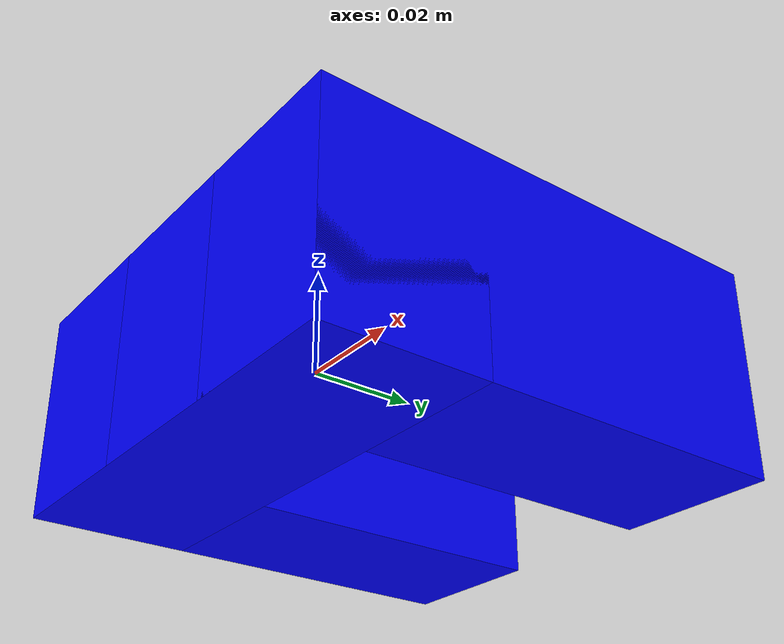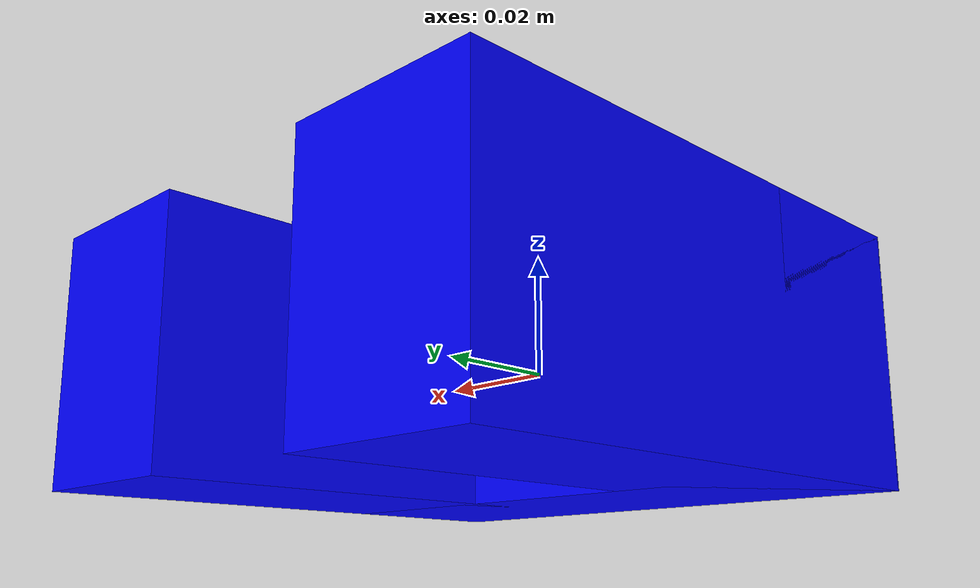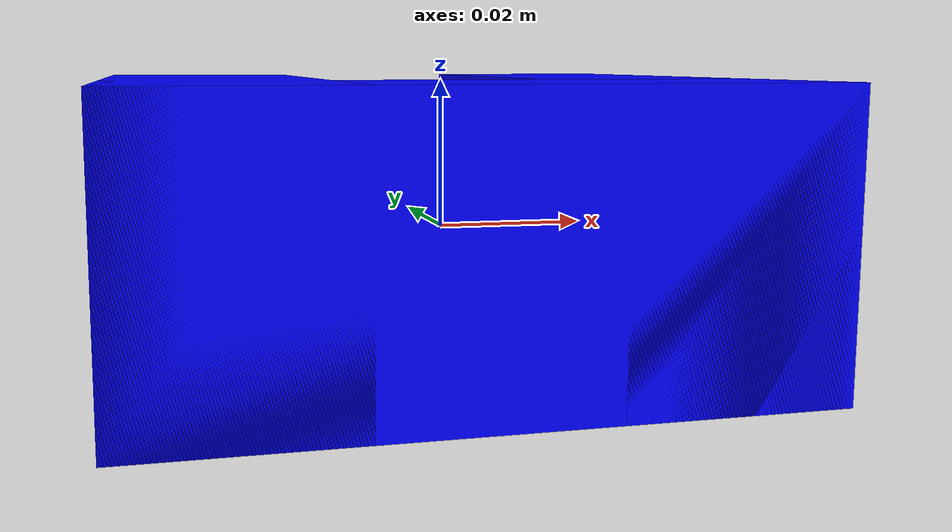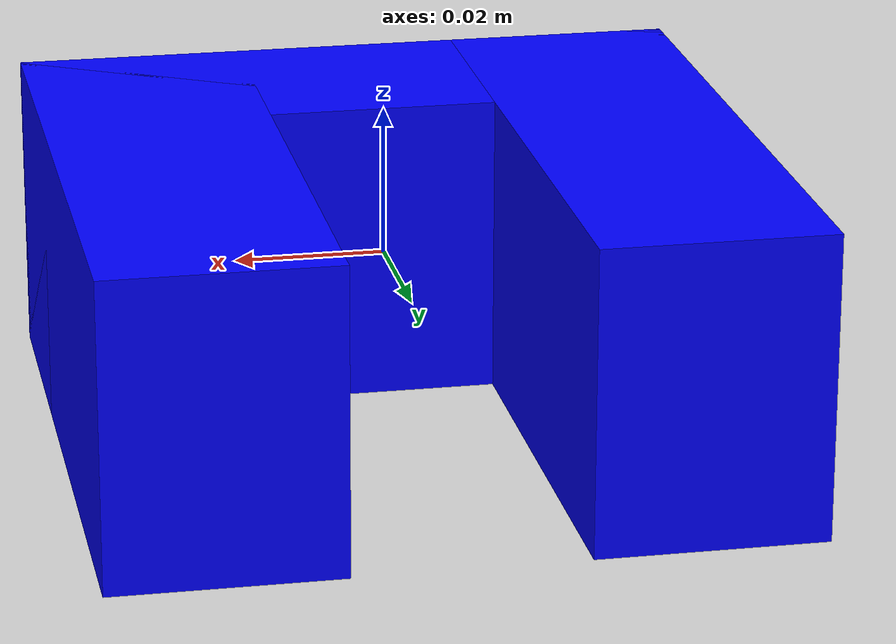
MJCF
<mujoco model="U">
  <worldbody>
    <body>
      <body name="collision">
        <geom pos="0 -0.015 0" size="0.045 0.015 0.02" type="box" solimp="0.998 0.998 0.001" solref="0.02 1" density="100" friction="0.95 0.3 0.2" rgba="0 0 1 1" group="1" condim="4"/>
        <geom pos="0.03 0.015 0" size="0.015 0.045 0.02" type="box" solimp="0.998 0.998 0.001" solref="0.02 1" density="100" friction="0.95 0.3 0.1" rgba="0 0 1 1" group="1" condim="4"/>
        <geom pos="-0.03 0.015 0" size="0.015 0.045 0.02" type="box" solimp="0.998 0.998 0.001" solref="0.02 1" density="100" friction="0.95 0.3 0.1" rgba="0 0 1 1" group="1" condim="4"/>
      </body>
      <site rgba="0 0 0 0" size="0.005" pos="0 0 -0.02" name="bottom_site"/>
      <site rgba="0 0 0 0" size="0.005" pos="0 0 0.02" name="top_site"/>
      <site rgba="0 0 0 0" size="0.005" pos="0.05 0.05 0" name="horizontal_radius_site"/>
    </body>
  </worldbody>
</mujoco>
